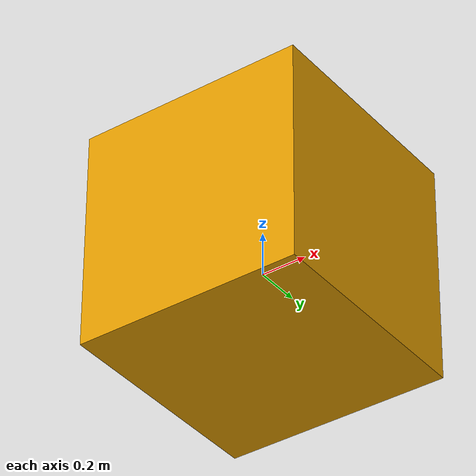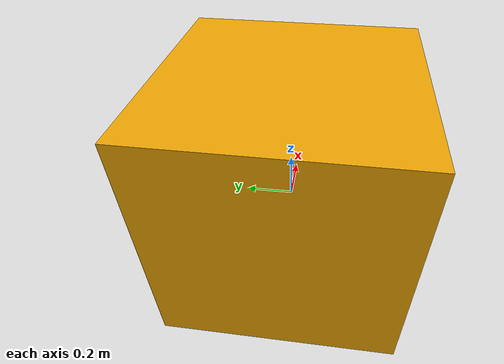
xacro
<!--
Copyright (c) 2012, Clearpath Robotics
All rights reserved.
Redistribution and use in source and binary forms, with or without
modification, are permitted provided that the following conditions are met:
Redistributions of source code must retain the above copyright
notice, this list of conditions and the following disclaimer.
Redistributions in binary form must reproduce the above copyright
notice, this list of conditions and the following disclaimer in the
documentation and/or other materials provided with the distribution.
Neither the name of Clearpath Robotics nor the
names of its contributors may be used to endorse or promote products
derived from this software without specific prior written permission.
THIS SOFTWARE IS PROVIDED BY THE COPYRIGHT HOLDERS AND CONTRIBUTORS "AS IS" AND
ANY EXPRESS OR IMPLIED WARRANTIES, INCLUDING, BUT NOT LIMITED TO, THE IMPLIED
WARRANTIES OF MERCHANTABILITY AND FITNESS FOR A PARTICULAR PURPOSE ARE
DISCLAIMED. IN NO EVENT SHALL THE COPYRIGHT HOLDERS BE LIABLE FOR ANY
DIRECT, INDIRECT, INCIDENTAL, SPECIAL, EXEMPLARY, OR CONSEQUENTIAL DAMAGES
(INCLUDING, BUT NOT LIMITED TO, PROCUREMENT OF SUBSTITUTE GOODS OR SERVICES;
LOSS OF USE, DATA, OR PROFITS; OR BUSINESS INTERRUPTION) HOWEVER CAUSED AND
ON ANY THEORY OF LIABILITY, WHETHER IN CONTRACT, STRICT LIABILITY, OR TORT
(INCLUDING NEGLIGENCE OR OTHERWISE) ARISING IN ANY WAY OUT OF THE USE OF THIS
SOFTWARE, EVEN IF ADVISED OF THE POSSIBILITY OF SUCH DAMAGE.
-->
<?xml version="1.0"?>
<!-- Modified to minimize inertia terms
Brian Bingham
Jan, 2017
Original copyright below-->

<robot name="kingfisher" xmlns:xacro="http://ros.org/wiki/xacro">

  <!-- Included URDF/XACRO Files -->
  <xacro:include filename="$(find kingfisher_description)/urdf/materials.urdf.xacro" />
  <!-- Replace original Kingfisher file with new one with minimial inertia-->
  <xacro:include filename="$(find kingfisher_gazebo)/urdf/parts.mininertia.urdf.xacro" />

  <!-- PROPERTY LIST -->
  <!--All units in m-kg-s-radians unit system -->
  <xacro:property name="M_PI" value="3.1415926535897931" />
  <xacro:property name="HH" value="0.09" />
  <!-- BASE-FOOTPRINT -->
  <!-- base_fotporint is a fictitious link(frame) that is on the ground right below base_link origin, navigation stack depends on this frame -->
  <link name="base_footprint">
    <inertial>
      <mass value="1e-5" />
      <origin xyz="0 0 ${HH} " />
      <inertia ixx="1e-6" ixy="0.0" ixz="0.0"
	       iyy="1e-6" iyz="0.0"
	       izz="1e-6" />
    </inertial>

    <visual>
      <origin xyz="0 0 ${HH}" rpy="0 0 0" />
      <geometry>
	<box size="1 1 1" />
      </geometry>
    </visual>
  </link>

  <gazebo reference="base_footprint">
    <turnGravityOff>false</turnGravityOff>
  </gazebo>
</robot>
